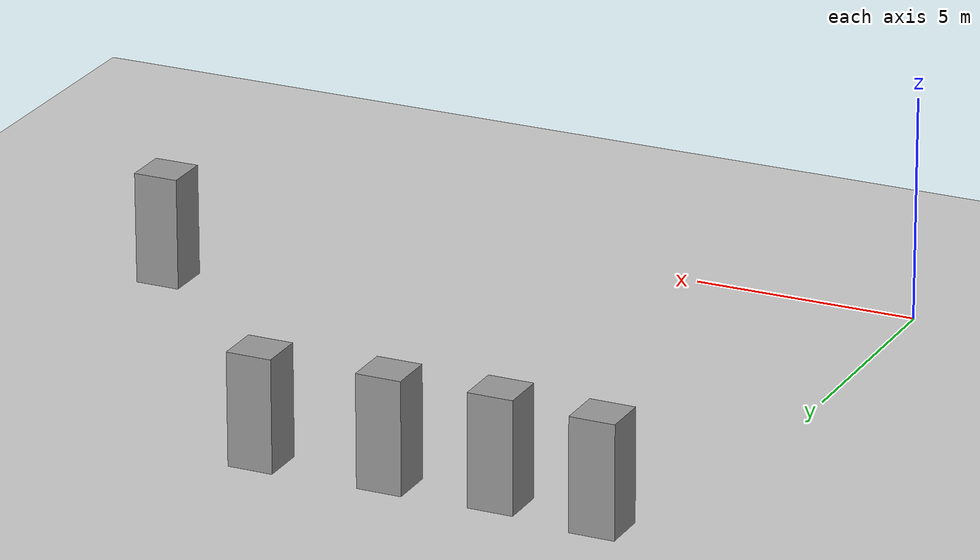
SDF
<sdf version="1.6">
 <world name="default">
  <light name="sun" type="directional">
   <pose>0 0 10 0 -0 0</pose>
   <diffuse>0.8 0.8 0.8 1</diffuse>
   <specular>0.2 0.2 0.2 1</specular>
   <attenuation>
    <range>1000</range>
    <constant>0.9</constant>
    <linear>0.01</linear>
    <quadratic>0.001</quadratic>
   </attenuation>
   <direction>-0.5 0.1 -0.9</direction>
  </light>
  <model name="ground_plane">
   <static>1</static>
   <link name="link">
    <collision name="collision">
     <geometry><plane><normal>0 0 1</normal><size>100 100</size></plane></geometry>
     <surface><friction><ode><mu>100</mu><mu2>50</mu2></ode></friction></surface>
    </collision>
    <visual name="visual">
     <cast_shadows>0</cast_shadows>
     <geometry><plane><normal>0 0 1</normal><size>100 100</size></plane></geometry>
     <material>
      <script><uri>file://media/materials/scripts/gazebo.material</uri><name>Gazebo/Grey</name></script>
     </material>
    </visual>
   </link>
  </model>
  <gravity>0 0 -9.8</gravity>
  <magnetic_field>6e-06 2.3e-05 -4.2e-05</magnetic_field>
  <atmosphere type="adiabatic"/>
  <physics name="default_physics" default="0" type="ode">
   <max_step_size>0.001</max_step_size>
   <real_time_factor>1</real_time_factor>
   <real_time_update_rate>1000</real_time_update_rate>
  </physics>
  <scene><ambient>0.4 0.4 0.4 1</ambient><background>0.7 0.7 0.7 1</background><shadows>1</shadows></scene>
  <spherical_coordinates>
   <surface_model>EARTH_WGS84</surface_model>
   <latitude_deg>0</latitude_deg>
   <longitude_deg>0</longitude_deg>
   <elevation>0</elevation>
   <heading_deg>0</heading_deg>
  </spherical_coordinates>
  <model name="1*1*2_5">
   <link name="link">
    <inertial>
     <mass>1</mass>
     <inertia>
      <ixx>0.166667</ixx>
      <ixy>0</ixy>
      <ixz>0</ixz>
      <iyy>0.166667</iyy>
      <iyz>0</iyz>
      <izz>0.166667</izz>
     </inertia>
    </inertial>
    <visual name="visual">
     <geometry><box><size>1 1 2.5</size></box></geometry>
     <material>
      <script><name>Gazebo/Grey</name><uri>file://media/materials/scripts/gazebo.material</uri></script>
      <shader type="pixel"><normal_map>__default__</normal_map></shader>
      <ambient>0.3 0.3 0.3 1</ambient>
      <diffuse>0.7 0.7 0.7 1</diffuse>
      <specular>0.01 0.01 0.01 1</specular>
      <emissive>0 0 0 1</emissive>
     </material>
    </visual>
    <collision name="collision">
     <geometry><box><size>1 1 2.5</size></box></geometry>
     <surface>
      <friction>
       <ode><mu>1</mu><mu2>1</mu2><fdir1>0 0 0</fdir1><slip1>0</slip1><slip2>0</slip2></ode>
       <torsional>
        <coefficient>1</coefficient>
        <patch_radius>0</patch_radius>
        <surface_radius>0</surface_radius>
        <use_patch_radius>1</use_patch_radius>
        <ode><slip>0</slip></ode>
       </torsional>
      </friction>
      <bounce><restitution_coefficient>0</restitution_coefficient><threshold>1e+06</threshold></bounce>
      <contact>
       <collide_without_contact>0</collide_without_contact>
       <collide_without_contact_bitmask>1</collide_without_contact_bitmask>
       <collide_bitmask>1</collide_bitmask>
       <ode>
        <soft_cfm>0</soft_cfm>
        <soft_erp>0.2</soft_erp>
        <kp>1e+13</kp>
        <kd>1</kd>
        <max_vel>0.01</max_vel>
        <min_depth>0</min_depth>
       </ode>
       <bullet>
        <split_impulse>1</split_impulse>
        <split_impulse_penetration_threshold>-0.01</split_impulse_penetration_threshold>
        <soft_cfm>0</soft_cfm>
        <soft_erp>0.2</soft_erp>
        <kp>1e+13</kp>
        <kd>1</kd>
       </bullet>
      </contact>
     </surface>
    </collision>
   </link>
   <static>0</static>
   <pose>6.25651 12.5218 1.25 -1e-06 -1e-06 0.00195</pose>
  </model>
  <model name="1*1*2_5_0">
   <link name="link">
    <inertial>
     <mass>1</mass>
     <inertia>
      <ixx>0.166667</ixx>
      <ixy>0</ixy>
      <ixz>0</ixz>
      <iyy>0.166667</iyy>
      <iyz>0</iyz>
      <izz>0.166667</izz>
     </inertia>
    </inertial>
    <visual name="visual">
     <geometry><box><size>1 1 2.5</size></box></geometry>
     <material>
      <script><name>Gazebo/Grey</name><uri>file://media/materials/scripts/gazebo.material</uri></script>
      <shader type="pixel"><normal_map>__default__</normal_map></shader>
      <ambient>0.3 0.3 0.3 1</ambient>
      <diffuse>0.7 0.7 0.7 1</diffuse>
      <specular>0.01 0.01 0.01 1</specular>
      <emissive>0 0 0 1</emissive>
     </material>
    </visual>
    <collision name="collision">
     <geometry><box><size>1 1 2.5</size></box></geometry>
     <surface>
      <friction>
       <ode><mu>1</mu><mu2>1</mu2><fdir1>0 0 0</fdir1><slip1>0</slip1><slip2>0</slip2></ode>
       <torsional>
        <coefficient>1</coefficient>
        <patch_radius>0</patch_radius>
        <surface_radius>0</surface_radius>
        <use_patch_radius>1</use_patch_radius>
        <ode><slip>0</slip></ode>
       </torsional>
      </friction>
      <bounce><restitution_coefficient>0</restitution_coefficient><threshold>1e+06</threshold></bounce>
      <contact>
       <collide_without_contact>0</collide_without_contact>
       <collide_without_contact_bitmask>1</collide_without_contact_bitmask>
       <collide_bitmask>1</collide_bitmask>
       <ode>
        <soft_cfm>0</soft_cfm>
        <soft_erp>0.2</soft_erp>
        <kp>1e+13</kp>
        <kd>1</kd>
        <max_vel>0.01</max_vel>
        <min_depth>0</min_depth>
       </ode>
       <bullet>
        <split_impulse>1</split_impulse>
        <split_impulse_penetration_threshold>-0.01</split_impulse_penetration_threshold>
        <soft_cfm>0</soft_cfm>
        <soft_erp>0.2</soft_erp>
        <kp>1e+13</kp>
        <kd>1</kd>
       </bullet>
      </contact>
     </surface>
    </collision>
   </link>
   <static>0</static>
   <pose>15.4196 4.60088 1.25 1e-06 0 0.000125</pose>
  </model>
  <model name="1*1*2_5_1">
   <link name="link">
    <inertial>
     <mass>1</mass>
     <inertia>
      <ixx>0.166667</ixx>
      <ixy>0</ixy>
      <ixz>0</ixz>
      <iyy>0.166667</iyy>
      <iyz>0</iyz>
      <izz>0.166667</izz>
     </inertia>
    </inertial>
    <visual name="visual">
     <geometry><box><size>1 1 2.5</size></box></geometry>
     <material>
      <script><name>Gazebo/Grey</name><uri>file://media/materials/scripts/gazebo.material</uri></script>
      <shader type="pixel"><normal_map>__default__</normal_map></shader>
      <ambient>0.3 0.3 0.3 1</ambient>
      <diffuse>0.7 0.7 0.7 1</diffuse>
      <specular>0.01 0.01 0.01 1</specular>
      <emissive>0 0 0 1</emissive>
     </material>
    </visual>
    <collision name="collision">
     <geometry><box><size>1 1 2.5</size></box></geometry>
     <surface>
      <friction>
       <ode><mu>1</mu><mu2>1</mu2><fdir1>0 0 0</fdir1><slip1>0</slip1><slip2>0</slip2></ode>
       <torsional>
        <coefficient>1</coefficient>
        <patch_radius>0</patch_radius>
        <surface_radius>0</surface_radius>
        <use_patch_radius>1</use_patch_radius>
        <ode><slip>0</slip></ode>
       </torsional>
      </friction>
      <bounce><restitution_coefficient>0</restitution_coefficient><threshold>1e+06</threshold></bounce>
      <contact>
       <collide_without_contact>0</collide_without_contact>
       <collide_without_contact_bitmask>1</collide_without_contact_bitmask>
       <collide_bitmask>1</collide_bitmask>
       <ode>
        <soft_cfm>0</soft_cfm>
        <soft_erp>0.2</soft_erp>
        <kp>1e+13</kp>
        <kd>1</kd>
        <max_vel>0.01</max_vel>
        <min_depth>0</min_depth>
       </ode>
       <bullet>
        <split_impulse>1</split_impulse>
        <split_impulse_penetration_threshold>-0.01</split_impulse_penetration_threshold>
        <soft_cfm>0</soft_cfm>
        <soft_erp>0.2</soft_erp>
        <kp>1e+13</kp>
        <kd>1</kd>
       </bullet>
      </contact>
     </surface>
    </collision>
   </link>
   <static>0</static>
   <pose>3.81992 12.4569 1.25 -1e-06 -0 0.0005</pose>
  </model>
  <model name="1*1*2_5_2">
   <link name="link">
    <inertial>
     <mass>1</mass>
     <inertia>
      <ixx>0.166667</ixx>
      <ixy>0</ixy>
      <ixz>0</ixz>
      <iyy>0.166667</iyy>
      <iyz>0</iyz>
      <izz>0.166667</izz>
     </inertia>
    </inertial>
    <visual name="visual">
     <geometry><box><size>1 1 2.5</size></box></geometry>
     <material>
      <script><name>Gazebo/Grey</name><uri>file://media/materials/scripts/gazebo.material</uri></script>
      <shader type="pixel"><normal_map>__default__</normal_map></shader>
      <ambient>0.3 0.3 0.3 1</ambient>
      <diffuse>0.7 0.7 0.7 1</diffuse>
      <specular>0.01 0.01 0.01 1</specular>
      <emissive>0 0 0 1</emissive>
     </material>
    </visual>
    <collision name="collision">
     <geometry><box><size>1 1 2.5</size></box></geometry>
     <surface>
      <friction>
       <ode><mu>1</mu><mu2>1</mu2><fdir1>0 0 0</fdir1><slip1>0</slip1><slip2>0</slip2></ode>
       <torsional>
        <coefficient>1</coefficient>
        <patch_radius>0</patch_radius>
        <surface_radius>0</surface_radius>
        <use_patch_radius>1</use_patch_radius>
        <ode><slip>0</slip></ode>
       </torsional>
      </friction>
      <bounce><restitution_coefficient>0</restitution_coefficient><threshold>1e+06</threshold></bounce>
      <contact>
       <collide_without_contact>0</collide_without_contact>
       <collide_without_contact_bitmask>1</collide_without_contact_bitmask>
       <collide_bitmask>1</collide_bitmask>
       <ode>
        <soft_cfm>0</soft_cfm>
        <soft_erp>0.2</soft_erp>
        <kp>1e+13</kp>
        <kd>1</kd>
        <max_vel>0.01</max_vel>
        <min_depth>0</min_depth>
       </ode>
       <bullet>
        <split_impulse>1</split_impulse>
        <split_impulse_penetration_threshold>-0.01</split_impulse_penetration_threshold>
        <soft_cfm>0</soft_cfm>
        <soft_erp>0.2</soft_erp>
        <kp>1e+13</kp>
        <kd>1</kd>
       </bullet>
      </contact>
     </surface>
    </collision>
   </link>
   <static>0</static>
   <pose>9.10385 12.6147 1.25 1e-06 -0 3.8e-05</pose>
  </model>
  <model name="1*1*2_5_3">
   <link name="link">
    <inertial>
     <mass>1</mass>
     <inertia>
      <ixx>0.166667</ixx>
      <ixy>0</ixy>
      <ixz>0</ixz>
      <iyy>0.166667</iyy>
      <iyz>0</iyz>
      <izz>0.166667</izz>
     </inertia>
    </inertial>
    <visual name="visual">
     <geometry><box><size>1 1 2.5</size></box></geometry>
     <material>
      <script><name>Gazebo/Grey</name><uri>file://media/materials/scripts/gazebo.material</uri></script>
      <shader type="pixel"><normal_map>__default__</normal_map></shader>
      <ambient>0.3 0.3 0.3 1</ambient>
      <diffuse>0.7 0.7 0.7 1</diffuse>
      <specular>0.01 0.01 0.01 1</specular>
      <emissive>0 0 0 1</emissive>
     </material>
    </visual>
    <collision name="collision">
     <geometry><box><size>1 1 2.5</size></box></geometry>
     <surface>
      <friction>
       <ode><mu>1</mu><mu2>1</mu2><fdir1>0 0 0</fdir1><slip1>0</slip1><slip2>0</slip2></ode>
       <torsional>
        <coefficient>1</coefficient>
        <patch_radius>0</patch_radius>
        <surface_radius>0</surface_radius>
        <use_patch_radius>1</use_patch_radius>
        <ode><slip>0</slip></ode>
       </torsional>
      </friction>
      <bounce><restitution_coefficient>0</restitution_coefficient><threshold>1e+06</threshold></bounce>
      <contact>
       <collide_without_contact>0</collide_without_contact>
       <collide_without_contact_bitmask>1</collide_without_contact_bitmask>
       <collide_bitmask>1</collide_bitmask>
       <ode>
        <soft_cfm>0</soft_cfm>
        <soft_erp>0.2</soft_erp>
        <kp>1e+13</kp>
        <kd>1</kd>
        <max_vel>0.01</max_vel>
        <min_depth>0</min_depth>
       </ode>
       <bullet>
        <split_impulse>1</split_impulse>
        <split_impulse_penetration_threshold>-0.01</split_impulse_penetration_threshold>
        <soft_cfm>0</soft_cfm>
        <soft_erp>0.2</soft_erp>
        <kp>1e+13</kp>
        <kd>1</kd>
       </bullet>
      </contact>
     </surface>
    </collision>
   </link>
   <static>0</static>
   <pose>1.4894 12.704 1.25 0 3e-06 1.7e-05</pose>
  </model>
 </world>
</sdf>
